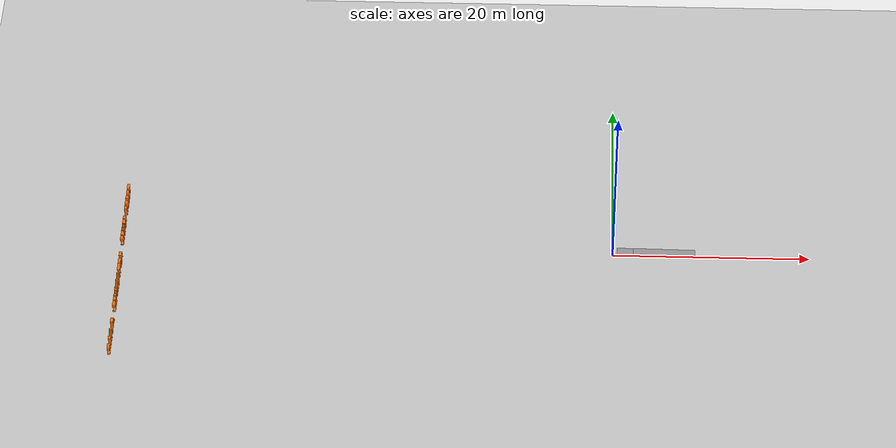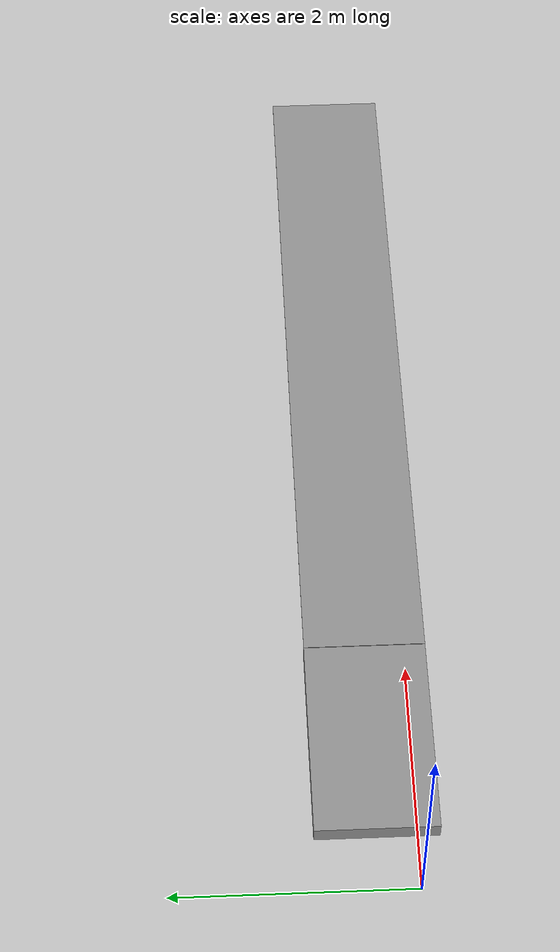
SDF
<sdf version="1.5">
 <world name="default">
  <include><uri>model://ground_plane</uri></include>
  <include><uri>model://sun</uri></include>
  <include><uri>model://asphalt_plane</uri></include>
  <include><uri>model://siar_ramp</uri><pose>1.242974 0.3382204 0.188019 0.0 0.0 0.003144</pose></include>
  <include><uri>model://siar_words</uri><pose>-50 0 0 0 0 0</pose></include>
 </world>
</sdf>

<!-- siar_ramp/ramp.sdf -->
<sdf version='1.5'>
  <model name="siar_ramp">

   <pose>-0.837461 0.048649 0.075 0 0 3.141529</pose>
   <static>true</static>

    <link name='ramp'>

      <collision name='collision_1'>
	<pose>0 0 0 0 0 0</pose>
        <geometry>
          <box>
            <size>1.67458 1.0 0.15</size>
          </box>
        </geometry>
      </collision>
      <visual name='visual_1'>
	<pose>0 0 0 0 0 0</pose>
        <geometry>
          <box>
            <size>1.67458 1.0 0.15</size>
          </box>
        </geometry>
        <material>
          <script>
            <name>Gazebo/Grey</name>
          </script>
        </material>
      </visual>
      <collision name='collision_2'>
      <pose>3.98729 0 0 0 0.023809 0</pose>
        <geometry>
          <box>
            <size>6.3 1.0 0.01</size>
          </box>
        </geometry>
      </collision>
      <visual name='visual_2'>
      <pose>3.98729 0 0 0 0.023809 0</pose>
        <geometry>
          <box>
            <size>6.3 1.0 0.01</size>
          </box>
        </geometry>
        <material>
          <script>
            <name>Gazebo/Grey</name>
          </script>
        </material>
      </visual>
    </link>

    <joint type="fixed" name="joint_steps">
      <pose>-3.15 0 0 0 0 0</pose>
      <child>second_step</child>
      <parent>first_step</parent>
    </joint>

  </model>
</sdf>

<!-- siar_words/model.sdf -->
<sdf version="1.5">
  <model name="siar Words">
    <static>true</static>

   <link name="link_1">
      <pose> 0 -14.5 0.1 0 0 1.5707 </pose>
      <collision name="collision">
        <geometry>
          <mesh>
            <uri>model://meshes/siar_simulator.dae</uri>
          </mesh>
        </geometry>
      </collision>
      <visual name="visual">
        <geometry>
          <mesh>
            <uri>model://meshes/siar_simulator.dae</uri>
          </mesh>
        </geometry>
      </visual>
    </link>
   <link name="link_2">
      <pose> 0 0 0.2 0 0 1.5707 </pose>
      <collision name="collision">
        <geometry>
          <mesh>
            <uri>model://meshes/sewer_robot.dae</uri>
          </mesh>
        </geometry>
      </collision>
      <visual name="visual">
        <geometry>
          <mesh>
            <uri>model://meshes/sewer_robot.dae</uri>
          </mesh>
        </geometry>
      </visual>
    </link>

  </model>
</sdf>
